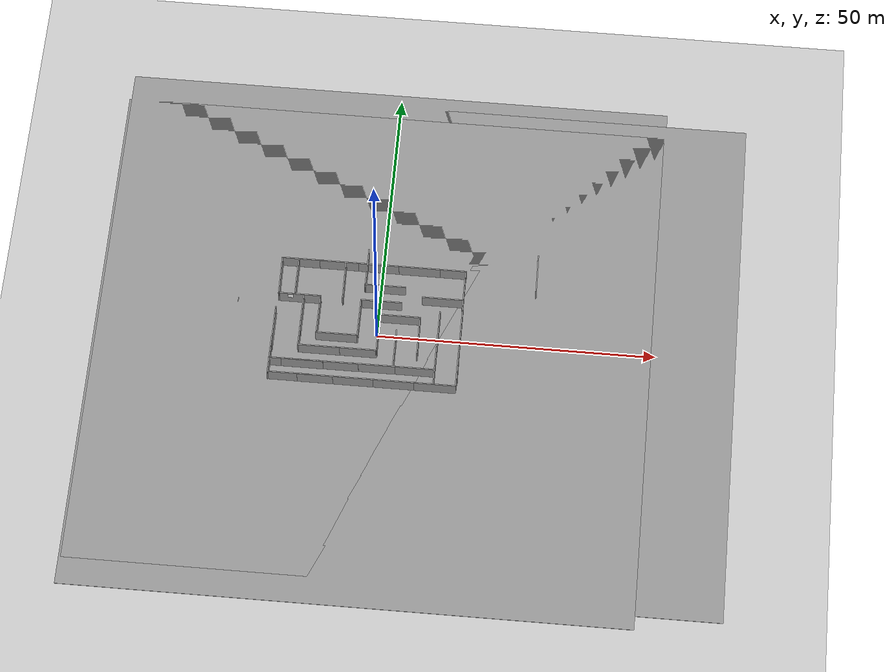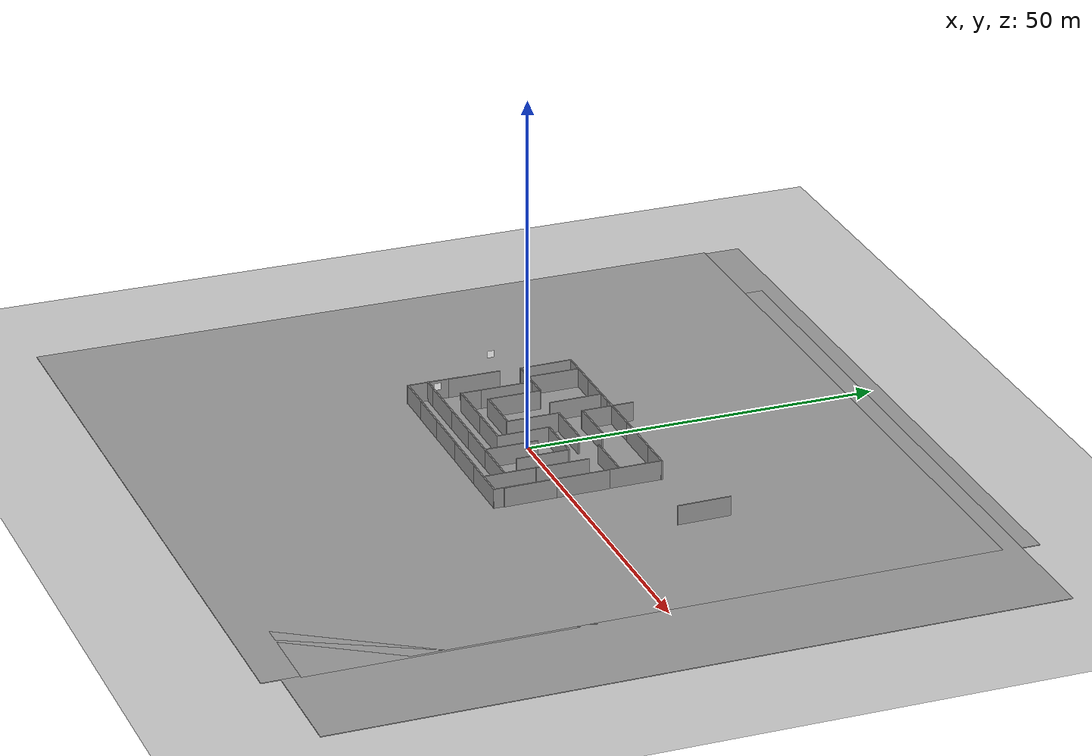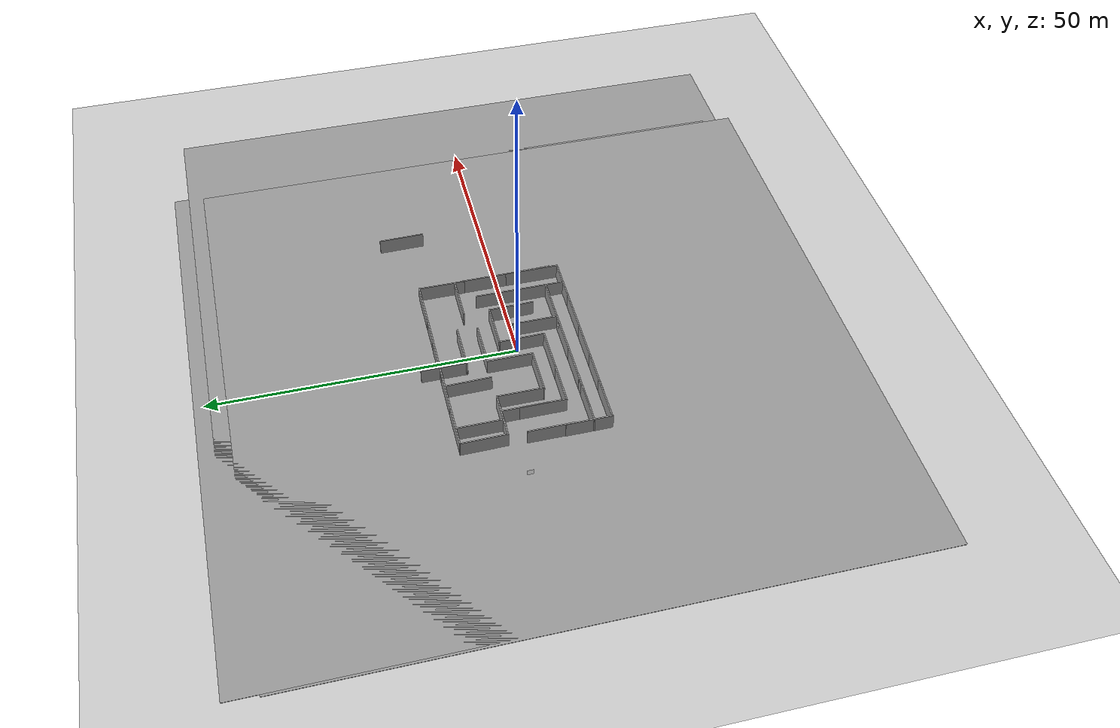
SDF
<sdf version="1.7">
 <world name="default">
  <light name="sun" type="directional">
   <pose>0 0 10 0 -0 0</pose>
   <diffuse>0.8 0.8 0.8 1</diffuse>
   <specular>0.2 0.2 0.2 1</specular>
   <attenuation>
    <range>1000</range>
    <constant>0.9</constant>
    <linear>0.01</linear>
    <quadratic>0.001</quadratic>
   </attenuation>
   <direction>-0.5 0.1 -0.9</direction>
   <spot><inner_angle>0</inner_angle><outer_angle>0</outer_angle><falloff>0</falloff></spot>
  </light>
  <model name="ground_plane">
   <static>1</static>
   <link name="link">
    <collision name="collision">
     <geometry><plane><normal>0 0 1</normal><size>100 100</size></plane></geometry>
     <surface><friction><ode><mu>100</mu><mu2>50</mu2></ode></friction></surface>
    </collision>
    <visual name="visual">
     <cast_shadows>0</cast_shadows>
     <geometry><plane><normal>0 0 1</normal><size>100 100</size></plane></geometry>
     <material>
      <script><uri>file://media/materials/scripts/gazebo.material</uri><name>Gazebo/Grey</name></script>
     </material>
    </visual>
   </link>
  </model>
  <physics name="default_physics" default="0" type="ode">
   <ode>
    <solver>
     <type>quick</type>
     <iters>10</iters>
     <sor>1.3</sor>
     <use_dynamic_moi_rescaling>0</use_dynamic_moi_rescaling>
    </solver>
    <constraints>
     <cfm>0</cfm>
     <erp>0.2</erp>
     <contact_max_correcting_vel>100</contact_max_correcting_vel>
     <contact_surface_layer>0.001</contact_surface_layer>
    </constraints>
   </ode>
   <max_step_size>0.004</max_step_size>
   <real_time_factor>1</real_time_factor>
   <real_time_update_rate>250</real_time_update_rate>
  </physics>
  <model name="grey_wall">
   <static>1</static>
   <link name="link">
    <pose>0 0 1.4 0 -0 0</pose>
    <collision name="collision"><geometry><box><size>7.5 0.2 2.8</size></box></geometry></collision>
    <visual name="visual">
     <cast_shadows>0</cast_shadows>
     <geometry><box><size>7.5 0.2 2.8</size></box></geometry>
     <material>
      <script>
       <uri>model://grey_wall/materials/scripts</uri>
       <uri>model://grey_wall/materials/textures</uri>
       <name>vrc/grey_wall</name>
      </script>
     </material>
    </visual>
   </link>
   <pose>14.9551 2.05959 0 0 0 -1.57</pose>
  </model>
  <model name="grey_wall2">
   <static>1</static>
   <link name="link">
    <pose>0 0 1.4 0 -0 0</pose>
    <collision name="collision"><geometry><box><size>7.5 0.2 2.8</size></box></geometry></collision>
    <visual name="visual">
     <cast_shadows>0</cast_shadows>
     <geometry><box><size>7.5 0.2 2.8</size></box></geometry>
     <material>
      <script>
       <uri>model://grey_wall/materials/scripts</uri>
       <uri>model://grey_wall/materials/textures</uri>
       <name>vrc/grey_wall</name>
      </script>
     </material>
    </visual>
   </link>
   <pose>-7.8442 13.1925 0 0 -0 0</pose>
  </model>
  <gravity>0 0 -9.8066</gravity>
  <magnetic_field>6e-06 2.3e-05 -4.2e-05</magnetic_field>
  <atmosphere type="adiabatic"/>
  <scene><ambient>0.4 0.4 0.4 1</ambient><background>0.7 0.7 0.7 1</background><shadows>1</shadows></scene>
  <audio><device>default</device></audio>
  <spherical_coordinates>
   <surface_model>EARTH_WGS84</surface_model>
   <latitude_deg>0</latitude_deg>
   <longitude_deg>0</longitude_deg>
   <elevation>0</elevation>
   <heading_deg>0</heading_deg>
  </spherical_coordinates>
  <model name="ground_plane_0">
   <static>1</static>
   <link name="link">
    <collision name="collision">
     <geometry><plane><normal>0 0 1</normal><size>100 100</size></plane></geometry>
     <surface><friction><ode><mu>100</mu><mu2>50</mu2></ode></friction></surface>
    </collision>
    <visual name="visual">
     <cast_shadows>0</cast_shadows>
     <geometry><plane><normal>0 0 1</normal><size>100 100</size></plane></geometry>
     <material>
      <script><uri>file://media/materials/scripts/gazebo.material</uri><name>Gazebo/Grey</name></script>
     </material>
    </visual>
   </link>
   <pose>-0.464511 1.60165 0 0 -0 0</pose>
  </model>
  <model name="grey_wall_1">
   <static>1</static>
   <link name="link">
    <pose>0 0 1.4 0 -0 0</pose>
    <collision name="collision"><geometry><box><size>7.5 0.2 2.8</size></box></geometry></collision>
    <visual name="visual">
     <cast_shadows>0</cast_shadows>
     <geometry><box><size>7.5 0.2 2.8</size></box></geometry>
     <material>
      <script>
       <uri>model://grey_wall/materials/scripts</uri>
       <uri>model://grey_wall/materials/textures</uri>
       <name>vrc/grey_wall</name>
      </script>
     </material>
    </visual>
   </link>
   <pose>0.28063 5.66889 0.02117 0 -0 0</pose>
  </model>
  <model name="ground_plane_1">
   <static>1</static>
   <link name="link">
    <collision name="collision">
     <geometry><plane><normal>0 0 1</normal><size>100 100</size></plane></geometry>
     <surface><friction><ode><mu>100</mu><mu2>50</mu2></ode></friction></surface>
    </collision>
    <visual name="visual">
     <cast_shadows>0</cast_shadows>
     <geometry><plane><normal>0 0 1</normal><size>100 100</size></plane></geometry>
     <material>
      <script><uri>file://media/materials/scripts/gazebo.material</uri><name>Gazebo/Grey</name></script>
     </material>
    </visual>
   </link>
   <pose>-0.823568 -3.4952 0 0 -0 0</pose>
  </model>
  <model name="grey_wall_0">
   <static>1</static>
   <link name="link">
    <pose>0 0 1.4 0 -0 0</pose>
    <collision name="collision"><geometry><box><size>7.5 0.2 2.8</size></box></geometry></collision>
    <visual name="visual">
     <cast_shadows>0</cast_shadows>
     <geometry><box><size>7.5 0.2 2.8</size></box></geometry>
     <material>
      <script>
       <uri>model://grey_wall/materials/scripts</uri>
       <uri>model://grey_wall/materials/textures</uri>
       <name>vrc/grey_wall</name>
      </script>
     </material>
    </visual>
   </link>
   <pose>-18.3431 9.47425 0 0 0 -1.5556</pose>
  </model>
  <model name="grey_wall_clone">
   <static>1</static>
   <link name="link">
    <pose>0 0 1.4 0 -0 0</pose>
    <collision name="collision"><geometry><box><size>7.5 0.2 2.8</size></box></geometry></collision>
    <visual name="visual">
     <cast_shadows>0</cast_shadows>
     <geometry><box><size>7.5 0.2 2.8</size></box></geometry>
     <material>
      <script>
       <uri>model://grey_wall/materials/scripts</uri>
       <uri>model://grey_wall/materials/textures</uri>
       <name>vrc/grey_wall</name>
      </script>
     </material>
    </visual>
   </link>
   <pose>3.51845 -3.70048 0 0 0 -1.57</pose>
  </model>
  <model name="grey_wall_clone_0">
   <static>1</static>
   <link name="link">
    <pose>0 0 1.4 0 -0 0</pose>
    <collision name="collision"><geometry><box><size>7.5 0.2 2.8</size></box></geometry></collision>
    <visual name="visual">
     <cast_shadows>0</cast_shadows>
     <geometry><box><size>7.5 0.2 2.8</size></box></geometry>
     <material>
      <script>
       <uri>model://grey_wall/materials/scripts</uri>
       <uri>model://grey_wall/materials/textures</uri>
       <name>vrc/grey_wall</name>
      </script>
     </material>
    </visual>
   </link>
   <pose>14.9474 -6.7391 0 0 0 -1.57</pose>
  </model>
  <model name="grey_wall2_clone">
   <static>1</static>
   <link name="link">
    <pose>0 0 1.4 0 -0 0</pose>
    <collision name="collision"><geometry><box><size>7.5 0.2 2.8</size></box></geometry></collision>
    <visual name="visual">
     <cast_shadows>0</cast_shadows>
     <geometry><box><size>7.5 0.2 2.8</size></box></geometry>
     <material>
      <script>
       <uri>model://grey_wall/materials/scripts</uri>
       <uri>model://grey_wall/materials/textures</uri>
       <name>vrc/grey_wall</name>
      </script>
     </material>
    </visual>
   </link>
   <pose>11.3177 13.1553 0 0 -0 0</pose>
  </model>
  <model name="grey_wall_clone_clone">
   <static>1</static>
   <link name="link">
    <pose>0 0 1.4 0 -0 0</pose>
    <collision name="collision"><geometry><box><size>7.5 0.2 2.8</size></box></geometry></collision>
    <visual name="visual">
     <cast_shadows>0</cast_shadows>
     <geometry><box><size>7.5 0.2 2.8</size></box></geometry>
     <material>
      <script>
       <uri>model://grey_wall/materials/scripts</uri>
       <uri>model://grey_wall/materials/textures</uri>
       <name>vrc/grey_wall</name>
      </script>
     </material>
    </visual>
   </link>
   <pose>-13.7285 2.11301 0 0 0 -1.57</pose>
  </model>
  <model name="grey_wall_clone_clone_0">
   <static>1</static>
   <link name="link">
    <pose>0 0 1.4 0 -0 0</pose>
    <collision name="collision"><geometry><box><size>7.5 0.2 2.8</size></box></geometry></collision>
    <visual name="visual">
     <cast_shadows>0</cast_shadows>
     <geometry><box><size>7.5 0.2 2.8</size></box></geometry>
     <material>
      <script>
       <uri>model://grey_wall/materials/scripts</uri>
       <uri>model://grey_wall/materials/textures</uri>
       <name>vrc/grey_wall</name>
      </script>
     </material>
    </visual>
   </link>
   <pose>-2.92535 12.4984 0 0 0 -1.57</pose>
  </model>
  <model name="grey_wall_clone_clone_1">
   <static>1</static>
   <link name="link">
    <pose>0 0 1.4 0 -0 0</pose>
    <collision name="collision"><geometry><box><size>7.5 0.2 2.8</size></box></geometry></collision>
    <visual name="visual">
     <cast_shadows>0</cast_shadows>
     <geometry><box><size>7.5 0.2 2.8</size></box></geometry>
     <material>
      <script>
       <uri>model://grey_wall/materials/scripts</uri>
       <uri>model://grey_wall/materials/textures</uri>
       <name>vrc/grey_wall</name>
      </script>
     </material>
    </visual>
   </link>
   <pose>10.9636 0.688063 0 0 0 -1.57</pose>
  </model>
  <model name="grey_wall_clone_clone_2">
   <static>1</static>
   <link name="link">
    <pose>0 0 1.4 0 -0 0</pose>
    <collision name="collision"><geometry><box><size>7.5 0.2 2.8</size></box></geometry></collision>
    <visual name="visual">
     <cast_shadows>0</cast_shadows>
     <geometry><box><size>7.5 0.2 2.8</size></box></geometry>
     <material>
      <script>
       <uri>model://grey_wall/materials/scripts</uri>
       <uri>model://grey_wall/materials/textures</uri>
       <name>vrc/grey_wall</name>
      </script>
     </material>
    </visual>
   </link>
   <pose>14.8784 9.31723 0 0 0 -1.57</pose>
  </model>
  <model name="grey_wall2_clone_clone">
   <static>1</static>
   <link name="link">
    <pose>0 0 1.4 0 -0 0</pose>
    <collision name="collision"><geometry><box><size>7.5 0.2 2.8</size></box></geometry></collision>
    <visual name="visual">
     <cast_shadows>0</cast_shadows>
     <geometry><box><size>7.5 0.2 2.8</size></box></geometry>
     <material>
      <script>
       <uri>model://grey_wall/materials/scripts</uri>
       <uri>model://grey_wall/materials/textures</uri>
       <name>vrc/grey_wall</name>
      </script>
     </material>
    </visual>
   </link>
   <pose>-0.814881 13.1804 0 0 -0 0</pose>
  </model>
  <model name="grey_wall2_clone_clone_0">
   <static>1</static>
   <link name="link">
    <pose>0 0 1.4 0 -0 0</pose>
    <collision name="collision"><geometry><box><size>7.5 0.2 2.8</size></box></geometry></collision>
    <visual name="visual">
     <cast_shadows>0</cast_shadows>
     <geometry><box><size>7.5 0.2 2.8</size></box></geometry>
     <material>
      <script>
       <uri>model://grey_wall/materials/scripts</uri>
       <uri>model://grey_wall/materials/textures</uri>
       <name>vrc/grey_wall</name>
      </script>
     </material>
    </visual>
   </link>
   <pose>6.54043 13.1498 0.03026 0 -0 0</pose>
  </model>
  <model name="grey_wall2_clone_clone_1">
   <static>1</static>
   <link name="link">
    <pose>0 0 1.4 0 -0 0</pose>
    <collision name="collision"><geometry><box><size>7.5 0.2 2.8</size></box></geometry></collision>
    <visual name="visual">
     <cast_shadows>0</cast_shadows>
     <geometry><box><size>7.5 0.2 2.8</size></box></geometry>
     <material>
      <script>
       <uri>model://grey_wall/materials/scripts</uri>
       <uri>model://grey_wall/materials/textures</uri>
       <name>vrc/grey_wall</name>
      </script>
     </material>
    </visual>
   </link>
   <pose>-3.19351 -10.3671 0 0 -0 0</pose>
  </model>
  <model name="grey_wall2_clone_clone_2">
   <static>1</static>
   <link name="link">
    <pose>0 0 1.4 0 -0 0</pose>
    <collision name="collision"><geometry><box><size>7.5 0.2 2.8</size></box></geometry></collision>
    <visual name="visual">
     <cast_shadows>0</cast_shadows>
     <geometry><box><size>7.5 0.2 2.8</size></box></geometry>
     <material>
      <script>
       <uri>model://grey_wall/materials/scripts</uri>
       <uri>model://grey_wall/materials/textures</uri>
       <name>vrc/grey_wall</name>
      </script>
     </material>
    </visual>
   </link>
   <pose>-14.8822 -10.3456 0 0 -0 0</pose>
  </model>
  <model name="ground_plane_2">
   <static>1</static>
   <link name="link">
    <collision name="collision">
     <geometry><plane><normal>0 0 1</normal><size>100 100</size></plane></geometry>
     <surface><friction><ode><mu>100</mu><mu2>50</mu2></ode></friction></surface>
    </collision>
    <visual name="visual">
     <cast_shadows>0</cast_shadows>
     <geometry><plane><normal>0 0 1</normal><size>100 100</size></plane></geometry>
     <material>
      <script><uri>file://media/materials/scripts/gazebo.material</uri><name>Gazebo/Grey</name></script>
     </material>
    </visual>
   </link>
   <pose>14.3028 -0.922524 0 0 -0 0</pose>
  </model>
  <model name="robocup_3d_field">
   <static>1</static>
   <link name="field">
    <pose>0 0 0.01 0 -0 0</pose>
    <collision name="collision">
     <geometry><plane><normal>0 0 1</normal><size>30 20</size></plane></geometry>
     <surface><friction><ode><mu>100</mu><mu2>50</mu2></ode></friction></surface>
    </collision>
    <visual name="base1">
     <pose>0 11 0.001 0 -0 0</pose>
     <cast_shadows>0</cast_shadows>
     <geometry><plane><normal>0 0 1</normal><size>34 2</size></plane></geometry>
     <material>
      <script>
       <uri>model://robocup_3Dsim_field/materials/scripts/</uri>
       <uri>model://robocup_3Dsim_field/materials/textures/</uri>
       <name>RoboCup/FieldBorder</name>
      </script>
     </material>
    </visual>
    <visual name="base2">
     <pose>0 -11 0.001 0 -0 0</pose>
     <cast_shadows>0</cast_shadows>
     <geometry><plane><normal>0 0 1</normal><size>34 2</size></plane></geometry>
     <material>
      <script>
       <uri>model://robocup_3Dsim_field/materials/scripts/</uri>
       <uri>model://robocup_3Dsim_field/materials/textures/</uri>
       <name>RoboCup/FieldBorder</name>
      </script>
     </material>
    </visual>
    <visual name="base3">
     <pose>16 0 0.001 0 -0 0</pose>
     <cast_shadows>0</cast_shadows>
     <geometry><plane><normal>0 0 1</normal><size>2 20</size></plane></geometry>
     <material>
      <script>
       <uri>model://robocup_3Dsim_field/materials/scripts/</uri>
       <uri>model://robocup_3Dsim_field/materials/textures/</uri>
       <name>RoboCup/FieldBorder</name>
      </script>
     </material>
    </visual>
    <visual name="base4">
     <pose>-16 0 0.001 0 -0 0</pose>
     <cast_shadows>0</cast_shadows>
     <geometry><plane><normal>0 0 1</normal><size>2 20</size></plane></geometry>
     <material>
      <script>
       <uri>model://robocup_3Dsim_field/materials/scripts/</uri>
       <uri>model://robocup_3Dsim_field/materials/textures/</uri>
       <name>RoboCup/FieldBorder</name>
      </script>
     </material>
    </visual>
    <visual name="carpet">
     <cast_shadows>0</cast_shadows>
     <geometry><plane><normal>0 0 1</normal><size>30 20</size></plane></geometry>
     <material>
      <script>
       <uri>model://robocup_3Dsim_field/materials/scripts/</uri>
       <uri>model://robocup_3Dsim_field/materials/textures/</uri>
       <name>RoboCup/Grass</name>
      </script>
     </material>
    </visual>
   </link>
   <pose>-1.73085 1.42275 0 0 -0 0</pose>
  </model>
  <model name="grey_wall_clone_clone_2_clone">
   <static>1</static>
   <link name="link">
    <pose>0 0 1.4 0 -0 0</pose>
    <collision name="collision"><geometry><box><size>7.5 0.2 2.8</size></box></geometry></collision>
    <visual name="visual">
     <cast_shadows>0</cast_shadows>
     <geometry><box><size>7.5 0.2 2.8</size></box></geometry>
     <material>
      <script>
       <uri>model://grey_wall/materials/scripts</uri>
       <uri>model://grey_wall/materials/textures</uri>
       <name>vrc/grey_wall</name>
      </script>
     </material>
    </visual>
   </link>
   <pose>-3.38793 1.97665 0 0 0 -1.57</pose>
  </model>
  <model name="grey_wall_clone_clone_2_clone_0">
   <static>1</static>
   <link name="link">
    <pose>0 0 1.4 0 -0 0</pose>
    <collision name="collision"><geometry><box><size>7.5 0.2 2.8</size></box></geometry></collision>
    <visual name="visual">
     <cast_shadows>0</cast_shadows>
     <geometry><box><size>7.5 0.2 2.8</size></box></geometry>
     <material>
      <script>
       <uri>model://grey_wall/materials/scripts</uri>
       <uri>model://grey_wall/materials/textures</uri>
       <name>vrc/grey_wall</name>
      </script>
     </material>
    </visual>
   </link>
   <pose>-18.4949 -0.854226 0 0 0 -1.57</pose>
  </model>
  <model name="grey_wall_clone_clone_2_clone_1">
   <static>1</static>
   <link name="link">
    <pose>0 0 1.4 0 -0 0</pose>
    <collision name="collision"><geometry><box><size>7.5 0.2 2.8</size></box></geometry></collision>
    <visual name="visual">
     <cast_shadows>0</cast_shadows>
     <geometry><box><size>7.5 0.2 2.8</size></box></geometry>
     <material>
      <script>
       <uri>model://grey_wall/materials/scripts</uri>
       <uri>model://grey_wall/materials/textures</uri>
       <name>vrc/grey_wall</name>
      </script>
     </material>
    </visual>
   </link>
   <pose>-18.5718 -6.80642 0 0 0 -1.57</pose>
  </model>
  <model name="grey_wall2_clone_clone_1_clone">
   <static>1</static>
   <link name="link">
    <pose>0 0 1.4 0 -0 0</pose>
    <collision name="collision"><geometry><box><size>7.5 0.2 2.8</size></box></geometry></collision>
    <visual name="visual">
     <cast_shadows>0</cast_shadows>
     <geometry><box><size>7.5 0.2 2.8</size></box></geometry>
     <material>
      <script>
       <uri>model://grey_wall/materials/scripts</uri>
       <uri>model://grey_wall/materials/textures</uri>
       <name>vrc/grey_wall</name>
      </script>
     </material>
    </visual>
   </link>
   <pose>-9.55626 -10.3656 0 0 -0 0</pose>
  </model>
  <model name="grey_wall_clone_clone_2_clone_clone">
   <static>1</static>
   <link name="link">
    <pose>0 0 1.4 0 -0 0</pose>
    <collision name="collision"><geometry><box><size>7.5 0.2 2.8</size></box></geometry></collision>
    <visual name="visual">
     <cast_shadows>0</cast_shadows>
     <geometry><box><size>7.5 0.2 2.8</size></box></geometry>
     <material>
      <script>
       <uri>model://grey_wall/materials/scripts</uri>
       <uri>model://grey_wall/materials/textures</uri>
       <name>vrc/grey_wall</name>
      </script>
     </material>
    </visual>
   </link>
   <pose>-15.385 9.49012 0 0 0 -1.57</pose>
  </model>
  <model name="grey_wall_0_clone">
   <static>1</static>
   <link name="link">
    <pose>0 0 1.4 0 -0 0</pose>
    <collision name="collision"><geometry><box><size>7.5 0.2 2.8</size></box></geometry></collision>
    <visual name="visual">
     <cast_shadows>0</cast_shadows>
     <geometry><box><size>7.5 0.2 2.8</size></box></geometry>
     <material>
      <script>
       <uri>model://grey_wall/materials/scripts</uri>
       <uri>model://grey_wall/materials/textures</uri>
       <name>vrc/grey_wall</name>
      </script>
     </material>
    </visual>
   </link>
   <pose>15.0092 -5.27414 0 0 0 -1.5556</pose>
  </model>
  <model name="grey_wall_0_clone_0">
   <static>1</static>
   <link name="link">
    <pose>0 0 1.4 0 -0 0</pose>
    <collision name="collision"><geometry><box><size>7.5 0.2 2.8</size></box></geometry></collision>
    <visual name="visual">
     <cast_shadows>0</cast_shadows>
     <geometry><box><size>7.5 0.2 2.8</size></box></geometry>
     <material>
      <script>
       <uri>model://grey_wall/materials/scripts</uri>
       <uri>model://grey_wall/materials/textures</uri>
       <name>vrc/grey_wall</name>
      </script>
     </material>
    </visual>
   </link>
   <pose>27.7694 13.9054 0 0 0 -1.5556</pose>
  </model>
  <model name="grey_wall_0_clone_1">
   <static>1</static>
   <link name="link">
    <pose>0 0 1.4 0 -0 0</pose>
    <collision name="collision"><geometry><box><size>7.5 0.2 2.8</size></box></geometry></collision>
    <visual name="visual">
     <cast_shadows>0</cast_shadows>
     <geometry><box><size>7.5 0.2 2.8</size></box></geometry>
     <material>
      <script>
       <uri>model://grey_wall/materials/scripts</uri>
       <uri>model://grey_wall/materials/textures</uri>
       <name>vrc/grey_wall</name>
      </script>
     </material>
    </visual>
   </link>
   <pose>7.53092 -0.749632 0 0 0 -1.5556</pose>
  </model>
  <model name="grey_wall_0_clone_2">
   <static>1</static>
   <link name="link">
    <pose>0 0 1.4 0 -0 0</pose>
    <collision name="collision"><geometry><box><size>7.5 0.2 2.8</size></box></geometry></collision>
    <visual name="visual">
     <cast_shadows>0</cast_shadows>
     <geometry><box><size>7.5 0.2 2.8</size></box></geometry>
     <material>
      <script>
       <uri>model://grey_wall/materials/scripts</uri>
       <uri>model://grey_wall/materials/textures</uri>
       <name>vrc/grey_wall</name>
      </script>
     </material>
    </visual>
   </link>
   <pose>0.261928 -0.791678 0 0 0 -1.5556</pose>
  </model>
  <model name="grey_wall_0_clone_3">
   <static>1</static>
   <link name="link">
    <pose>0 0 1.4 0 -0 0</pose>
    <collision name="collision"><geometry><box><size>7.5 0.2 2.8</size></box></geometry></collision>
    <visual name="visual">
     <cast_shadows>0</cast_shadows>
     <geometry><box><size>7.5 0.2 2.8</size></box></geometry>
     <material>
      <script>
       <uri>model://grey_wall/materials/scripts</uri>
       <uri>model://grey_wall/materials/textures</uri>
       <name>vrc/grey_wall</name>
      </script>
     </material>
    </visual>
   </link>
   <pose>-6.79686 9.44409 0 0 0 -1.5556</pose>
  </model>
  <model name="grey_wall2_clone_clone_0_clone">
   <static>1</static>
   <link name="link">
    <pose>0 0 1.4 0 -0 0</pose>
    <collision name="collision"><geometry><box><size>7.5 0.2 2.8</size></box></geometry></collision>
    <visual name="visual">
     <cast_shadows>0</cast_shadows>
     <geometry><box><size>7.5 0.2 2.8</size></box></geometry>
     <material>
      <script>
       <uri>model://grey_wall/materials/scripts</uri>
       <uri>model://grey_wall/materials/textures</uri>
       <name>vrc/grey_wall</name>
      </script>
     </material>
    </visual>
   </link>
   <pose>0.620783 8.92312 0 0 -0 0</pose>
  </model>
  <model name="grey_wall2_clone_clone_0_clone_0">
   <static>1</static>
   <link name="link">
    <pose>0 0 1.4 0 -0 0</pose>
    <collision name="collision"><geometry><box><size>7.5 0.2 2.8</size></box></geometry></collision>
    <visual name="visual">
     <cast_shadows>0</cast_shadows>
     <geometry><box><size>7.5 0.2 2.8</size></box></geometry>
     <material>
      <script>
       <uri>model://grey_wall/materials/scripts</uri>
       <uri>model://grey_wall/materials/textures</uri>
       <name>vrc/grey_wall</name>
      </script>
     </material>
    </visual>
   </link>
   <pose>11.2174 7.16559 0 0 -0 0</pose>
  </model>
  <model name="grey_wall2_clone_clone_0_clone_1">
   <static>1</static>
   <link name="link">
    <pose>0 0 1.4 0 -0 0</pose>
    <collision name="collision"><geometry><box><size>7.5 0.2 2.8</size></box></geometry></collision>
    <visual name="visual">
     <cast_shadows>0</cast_shadows>
     <geometry><box><size>7.5 0.2 2.8</size></box></geometry>
     <material>
      <script>
       <uri>model://grey_wall/materials/scripts</uri>
       <uri>model://grey_wall/materials/textures</uri>
       <name>vrc/grey_wall</name>
      </script>
     </material>
    </visual>
   </link>
   <pose>4.00163 -10.3793 0 0 -0 0</pose>
  </model>
  <model name="grey_wall2_clone_clone_0_clone_2">
   <static>1</static>
   <link name="link">
    <pose>0 0 1.4 0 -0 0</pose>
    <collision name="collision"><geometry><box><size>7.5 0.2 2.8</size></box></geometry></collision>
    <visual name="visual">
     <cast_shadows>0</cast_shadows>
     <geometry><box><size>7.5 0.2 2.8</size></box></geometry>
     <material>
      <script>
       <uri>model://grey_wall/materials/scripts</uri>
       <uri>model://grey_wall/materials/textures</uri>
       <name>vrc/grey_wall</name>
      </script>
     </material>
    </visual>
   </link>
   <pose>11.2527 -10.3893 0 0 -0 0</pose>
  </model>
  <model name="grey_wall2_clone_clone_0_clone_3">
   <static>1</static>
   <link name="link">
    <pose>0 0 1.4 0 -0 0</pose>
    <collision name="collision"><geometry><box><size>7.5 0.2 2.8</size></box></geometry></collision>
    <visual name="visual">
     <cast_shadows>0</cast_shadows>
     <geometry><box><size>7.5 0.2 2.8</size></box></geometry>
     <material>
      <script>
       <uri>model://grey_wall/materials/scripts</uri>
       <uri>model://grey_wall/materials/textures</uri>
       <name>vrc/grey_wall</name>
      </script>
     </material>
    </visual>
   </link>
   <pose>-14.6892 13.2022 0 0 -0 0</pose>
  </model>
  <model name="grey_wall2_clone_clone_0_clone_0_clone">
   <static>1</static>
   <link name="link">
    <pose>0 0 1.4 0 -0 0</pose>
    <collision name="collision"><geometry><box><size>7.5 0.2 2.8</size></box></geometry></collision>
    <visual name="visual">
     <cast_shadows>0</cast_shadows>
     <geometry><box><size>7.5 0.2 2.8</size></box></geometry>
     <material>
      <script>
       <uri>model://grey_wall/materials/scripts</uri>
       <uri>model://grey_wall/materials/textures</uri>
       <name>vrc/grey_wall</name>
      </script>
     </material>
    </visual>
   </link>
   <pose>-10.0335 -4.45423 0 0 -0 0</pose>
  </model>
  <model name="grey_wall2_clone_clone_0_clone_0_clone_0">
   <static>1</static>
   <link name="link">
    <pose>0 0 1.4 0 -0 0</pose>
    <collision name="collision"><geometry><box><size>7.5 0.2 2.8</size></box></geometry></collision>
    <visual name="visual">
     <cast_shadows>0</cast_shadows>
     <geometry><box><size>7.5 0.2 2.8</size></box></geometry>
     <material>
      <script>
       <uri>model://grey_wall/materials/scripts</uri>
       <uri>model://grey_wall/materials/textures</uri>
       <name>vrc/grey_wall</name>
      </script>
     </material>
    </visual>
   </link>
   <pose>-7.13434 -1.64655 0 0 -0 0</pose>
  </model>
  <model name="grey_wall2_clone_clone_0_clone_0_clone_1">
   <static>1</static>
   <link name="link">
    <pose>0 0 1.4 0 -0 0</pose>
    <collision name="collision"><geometry><box><size>7.5 0.2 2.8</size></box></geometry></collision>
    <visual name="visual">
     <cast_shadows>0</cast_shadows>
     <geometry><box><size>7.5 0.2 2.8</size></box></geometry>
     <material>
      <script>
       <uri>model://grey_wall/materials/scripts</uri>
       <uri>model://grey_wall/materials/textures</uri>
       <name>vrc/grey_wall</name>
      </script>
     </material>
    </visual>
   </link>
   <pose>-3.3845 -4.44173 0 0 -0 0</pose>
  </model>
  <model name="grey_wall2_clone_clone_0_clone_0_clone_2">
   <static>1</static>
   <link name="link">
    <pose>0 0 1.4 0 -0 0</pose>
    <collision name="collision"><geometry><box><size>7.5 0.2 2.8</size></box></geometry></collision>
    <visual name="visual">
     <cast_shadows>0</cast_shadows>
     <geometry><box><size>7.5 0.2 2.8</size></box></geometry>
     <material>
      <script>
       <uri>model://grey_wall/materials/scripts</uri>
       <uri>model://grey_wall/materials/textures</uri>
       <name>vrc/grey_wall</name>
      </script>
     </material>
    </visual>
   </link>
   <pose>3.84234 2.92148 0 0 -0 0</pose>
  </model>
  <model name="grey_wall_clone_clone_2_clone_clone_0">
   <static>1</static>
   <link name="link">
    <pose>0 0 1.4 0 -0 0</pose>
    <collision name="collision"><geometry><box><size>7.5 0.2 2.8</size></box></geometry></collision>
    <visual name="visual">
     <cast_shadows>0</cast_shadows>
     <geometry><box><size>7.5 0.2 2.8</size></box></geometry>
     <material>
      <script>
       <uri>model://grey_wall/materials/scripts</uri>
       <uri>model://grey_wall/materials/textures</uri>
       <name>vrc/grey_wall</name>
      </script>
     </material>
    </visual>
   </link>
   <pose>-10.7365 2.13673 0 0 0 -1.57</pose>
  </model>
  <model name="grey_wall_clone_clone_2_clone_clone_1">
   <static>1</static>
   <link name="link">
    <pose>0 0 1.4 0 -0 0</pose>
    <collision name="collision"><geometry><box><size>7.5 0.2 2.8</size></box></geometry></collision>
    <visual name="visual">
     <cast_shadows>0</cast_shadows>
     <geometry><box><size>7.5 0.2 2.8</size></box></geometry>
     <material>
      <script>
       <uri>model://grey_wall/materials/scripts</uri>
       <uri>model://grey_wall/materials/textures</uri>
       <name>vrc/grey_wall</name>
      </script>
     </material>
    </visual>
   </link>
   <pose>-13.7391 -0.816447 0 0 0 -1.57</pose>
  </model>
  <model name="grey_wall_clone_clone_2_clone_clone_2">
   <static>1</static>
   <link name="link">
    <pose>0 0 1.4 0 -0 0</pose>
    <collision name="collision"><geometry><box><size>7.5 0.2 2.8</size></box></geometry></collision>
    <visual name="visual">
     <cast_shadows>0</cast_shadows>
     <geometry><box><size>7.5 0.2 2.8</size></box></geometry>
     <material>
      <script>
       <uri>model://grey_wall/materials/scripts</uri>
       <uri>model://grey_wall/materials/textures</uri>
       <name>vrc/grey_wall</name>
      </script>
     </material>
    </visual>
   </link>
   <pose>10.9456 -6.60049 0 0 0 -1.57</pose>
  </model>
  <model name="grey_wall_1_clone">
   <static>1</static>
   <link name="link">
    <pose>0 0 1.4 0 -0 0</pose>
    <collision name="collision"><geometry><box><size>7.5 0.2 2.8</size></box></geometry></collision>
    <visual name="visual">
     <cast_shadows>0</cast_shadows>
     <geometry><box><size>7.5 0.2 2.8</size></box></geometry>
     <material>
      <script>
       <uri>model://grey_wall/materials/scripts</uri>
       <uri>model://grey_wall/materials/textures</uri>
       <name>vrc/grey_wall</name>
      </script>
     </material>
    </visual>
   </link>
   <pose>-14.3774 5.82895 0.02117 0 -0 0</pose>
  </model>
  <model name="grey_wall_1_clone_0">
   <static>1</static>
   <link name="link">
    <pose>0 0 1.4 0 -0 0</pose>
    <collision name="collision"><geometry><box><size>7.5 0.2 2.8</size></box></geometry></collision>
    <visual name="visual">
     <cast_shadows>0</cast_shadows>
     <geometry><box><size>7.5 0.2 2.8</size></box></geometry>
     <material>
      <script>
       <uri>model://grey_wall/materials/scripts</uri>
       <uri>model://grey_wall/materials/textures</uri>
       <name>vrc/grey_wall</name>
      </script>
     </material>
    </visual>
   </link>
   <pose>0.158334 -7.45045 0.02117 0 -0 0</pose>
  </model>
  <model name="grey_wall2_clone_clone_0_clone_0_clone_3">
   <static>1</static>
   <link name="link">
    <pose>0 0 1.4 0 -0 0</pose>
    <collision name="collision"><geometry><box><size>7.5 0.2 2.8</size></box></geometry></collision>
    <visual name="visual">
     <cast_shadows>0</cast_shadows>
     <geometry><box><size>7.5 0.2 2.8</size></box></geometry>
     <material>
      <script>
       <uri>model://grey_wall/materials/scripts</uri>
       <uri>model://grey_wall/materials/textures</uri>
       <name>vrc/grey_wall</name>
      </script>
     </material>
    </visual>
   </link>
   <pose>7.17771 -7.43055 0 0 -0 0</pose>
  </model>
  <model name="grey_wall_1_clone_0_clone">
   <static>1</static>
   <link name="link">
    <pose>0 0 1.4 0 -0 0</pose>
    <collision name="collision"><geometry><box><size>7.5 0.2 2.8</size></box></geometry></collision>
    <visual name="visual">
     <cast_shadows>0</cast_shadows>
     <geometry><box><size>7.5 0.2 2.8</size></box></geometry>
     <material>
      <script>
       <uri>model://grey_wall/materials/scripts</uri>
       <uri>model://grey_wall/materials/textures</uri>
       <name>vrc/grey_wall</name>
      </script>
     </material>
    </visual>
   </link>
   <pose>-6.37256 -7.47635 0.02117 0 -0 0</pose>
  </model>
  <model name="grey_wall_1_clone_0_clone_0">
   <static>1</static>
   <link name="link">
    <pose>0 0 1.4 0 -0 0</pose>
    <collision name="collision"><geometry><box><size>7.5 0.2 2.8</size></box></geometry></collision>
    <visual name="visual">
     <cast_shadows>0</cast_shadows>
     <geometry><box><size>7.5 0.2 2.8</size></box></geometry>
     <material>
      <script>
       <uri>model://grey_wall/materials/scripts</uri>
       <uri>model://grey_wall/materials/textures</uri>
       <name>vrc/grey_wall</name>
      </script>
     </material>
    </visual>
   </link>
   <pose>-12.7088 -7.5057 0.02117 0 -0 0</pose>
  </model>
  <model name="grey_wall_1_clone_0_clone_1">
   <static>1</static>
   <link name="link">
    <pose>0 0 1.4 0 -0 0</pose>
    <collision name="collision"><geometry><box><size>7.5 0.2 2.8</size></box></geometry></collision>
    <visual name="visual">
     <cast_shadows>0</cast_shadows>
     <geometry><box><size>7.5 0.2 2.8</size></box></geometry>
     <material>
      <script>
       <uri>model://grey_wall/materials/scripts</uri>
       <uri>model://grey_wall/materials/textures</uri>
       <name>vrc/grey_wall</name>
      </script>
     </material>
    </visual>
   </link>
   <pose>-14.9692 -7.49623 0.02117 0 -0 0</pose>
  </model>
  <model name="marker_0">
   <link name="marker">
    <pose>0 0 0.5 3.14159 1.57079 3.14159</pose>
    <inertial>
     <mass>1</mass>
     <inertia><ixx>1</ixx><ixy>0</ixy><ixz>0</ixz><iyy>1</iyy><iyz>0</iyz><izz>1</izz></inertia>
    </inertial>
    <visual name="visual">
     <geometry><box><size>1 1 1e-05</size></box></geometry>
     <material>
      <script>
       <uri>model://marker_0/materials/scripts</uri>
       <uri>model://marker_0/materials/textures</uri>
       <name>Marker0/Marker</name>
      </script>
      <ambient>1 1 1 1</ambient>
      <diffuse>1 1 1 1</diffuse>
      <specular>0 0 0 1</specular>
      <emissive>1 1 1 0</emissive>
      <shader type="vertex"><normal_map>__default__</normal_map></shader>
      <lighting>0</lighting>
     </material>
    </visual>
    <collision name="collision">
     <geometry><box><size>0.1778 0.1778 1e-05</size></box></geometry>
     <surface>
      <friction>
       <ode><mu>1</mu><mu2>1</mu2><fdir1>0 0 0</fdir1><slip1>0</slip1><slip2>0</slip2></ode>
       <torsional>
        <coefficient>1</coefficient>
        <patch_radius>0</patch_radius>
        <surface_radius>0</surface_radius>
        <use_patch_radius>1</use_patch_radius>
        <ode><slip>0</slip></ode>
       </torsional>
      </friction>
      <bounce><restitution_coefficient>0</restitution_coefficient><threshold>1e+06</threshold></bounce>
      <contact>
       <collide_without_contact>0</collide_without_contact>
       <collide_without_contact_bitmask>1</collide_without_contact_bitmask>
       <collide_bitmask>1</collide_bitmask>
       <ode>
        <soft_cfm>0</soft_cfm>
        <soft_erp>0.2</soft_erp>
        <kp>1e+13</kp>
        <kd>1</kd>
        <max_vel>0.01</max_vel>
        <min_depth>0</min_depth>
       </ode>
       <bullet>
        <split_impulse>1</split_impulse>
        <split_impulse_penetration_threshold>-0.01</split_impulse_penetration_threshold>
        <soft_cfm>0</soft_cfm>
        <soft_erp>0.2</soft_erp>
        <kp>1e+13</kp>
        <kd>1</kd>
       </bullet>
      </contact>
     </surface>
    </collision>
   </link>
   <link name="marker_pad">
    <pose>-1e-05 0 0.5 3.14159 1.57079 3.14159</pose>
    <inertial>
     <mass>1</mass>
     <inertia><ixx>1</ixx><ixy>0</ixy><ixz>0</ixz><iyy>1</iyy><iyz>0</iyz><izz>1</izz></inertia>
    </inertial>
    <visual name="visual">
     <geometry><box><size>0 0 0</size></box></geometry>
     <material>
      <lighting>0</lighting>
      <script><uri>file://media/materials/scripts/gazebo.material</uri><name>Gazebo/White</name></script>
      <ambient>0.3 0.3 0.3 1</ambient>
      <diffuse>0.7 0.7 0.7 1</diffuse>
      <specular>0.01 0.01 0.01 1</specular>
      <emissive>1 1 1 0</emissive>
      <shader type="vertex"><normal_map>__default__</normal_map></shader>
     </material>
    </visual>
    <collision name="collision">
     <geometry><box><size>0.1778 0.1778 1e-05</size></box></geometry>
     <surface>
      <friction>
       <ode><mu>1</mu><mu2>1</mu2><fdir1>0 0 0</fdir1><slip1>0</slip1><slip2>0</slip2></ode>
       <torsional>
        <coefficient>1</coefficient>
        <patch_radius>0</patch_radius>
        <surface_radius>0</surface_radius>
        <use_patch_radius>1</use_patch_radius>
        <ode><slip>0</slip></ode>
       </torsional>
      </friction>
      <bounce><restitution_coefficient>0</restitution_coefficient><threshold>1e+06</threshold></bounce>
      <contact>
       <collide_without_contact>0</collide_without_contact>
       <collide_without_contact_bitmask>1</collide_without_contact_bitmask>
       <collide_bitmask>1</collide_bitmask>
       <ode>
        <soft_cfm>0</soft_cfm>
        <soft_erp>0.2</soft_erp>
        <kp>1e+13</kp>
        <kd>1</kd>
        <max_vel>0.01</max_vel>
        <min_depth>0</min_depth>
       </ode>
       <bullet>
        <split_impulse>1</split_impulse>
        <split_impulse_penetration_threshold>-0.01</split_impulse_penetration_threshold>
        <soft_cfm>0</soft_cfm>
        <soft_erp>0.2</soft_erp>
        <kp>1e+13</kp>
        <kd>1</kd>
       </bullet>
      </contact>
     </surface>
    </collision>
   </link>
   <joint name="marker_JOINT_marker_pad" type="revolute">
    <parent>marker</parent>
    <child>marker_pad</child>
    <axis>
     <xyz>0 0 1</xyz>
     <limit><lower>0</lower><upper>0</upper><effort>-1</effort><velocity>-1</velocity></limit>
     <dynamics>
      <spring_reference>0</spring_reference>
      <spring_stiffness>0</spring_stiffness>
      <damping>0</damping>
      <friction>0</friction>
     </dynamics>
    </axis>
    <physics>
     <ode><limit><cfm>0</cfm><erp>0.2</erp></limit><suspension><cfm>0</cfm><erp>0.2</erp></suspension></ode>
    </physics>
   </joint>
   <static>1</static>
   <pose>2.24144 -7.28894 1.45828 0 0 -1.5708</pose>
  </model>
  <model name="marker_0_0">
   <link name="marker">
    <pose>0 0 0.5 3.14159 1.57079 3.14159</pose>
    <inertial>
     <mass>1</mass>
     <inertia><ixx>1</ixx><ixy>0</ixy><ixz>0</ixz><iyy>1</iyy><iyz>0</iyz><izz>1</izz></inertia>
    </inertial>
    <visual name="visual">
     <geometry><box><size>1 1 1e-05</size></box></geometry>
     <material>
      <script>
       <uri>model://marker_0/materials/scripts</uri>
       <uri>model://marker_0/materials/textures</uri>
       <name>Marker0/Marker</name>
      </script>
      <ambient>1 1 1 1</ambient>
      <diffuse>1 1 1 1</diffuse>
      <specular>0 0 0 1</specular>
      <emissive>1 1 1 0</emissive>
      <shader type="vertex"><normal_map>__default__</normal_map></shader>
      <lighting>0</lighting>
     </material>
    </visual>
    <collision name="collision">
     <geometry><box><size>0.1778 0.1778 1e-05</size></box></geometry>
     <surface>
      <friction>
       <ode><mu>1</mu><mu2>1</mu2><fdir1>0 0 0</fdir1><slip1>0</slip1><slip2>0</slip2></ode>
       <torsional>
        <coefficient>1</coefficient>
        <patch_radius>0</patch_radius>
        <surface_radius>0</surface_radius>
        <use_patch_radius>1</use_patch_radius>
        <ode><slip>0</slip></ode>
       </torsional>
      </friction>
      <bounce><restitution_coefficient>0</restitution_coefficient><threshold>1e+06</threshold></bounce>
      <contact>
       <collide_without_contact>0</collide_without_contact>
       <collide_without_contact_bitmask>1</collide_without_contact_bitmask>
       <collide_bitmask>1</collide_bitmask>
       <ode>
        <soft_cfm>0</soft_cfm>
        <soft_erp>0.2</soft_erp>
        <kp>1e+13</kp>
        <kd>1</kd>
        <max_vel>0.01</max_vel>
        <min_depth>0</min_depth>
       </ode>
       <bullet>
        <split_impulse>1</split_impulse>
        <split_impulse_penetration_threshold>-0.01</split_impulse_penetration_threshold>
        <soft_cfm>0</soft_cfm>
        <soft_erp>0.2</soft_erp>
        <kp>1e+13</kp>
        <kd>1</kd>
       </bullet>
      </contact>
     </surface>
    </collision>
   </link>
   <link name="marker_pad">
    <pose>-1e-05 0 0.5 3.14159 1.57079 3.14159</pose>
    <inertial>
     <mass>1</mass>
     <inertia><ixx>1</ixx><ixy>0</ixy><ixz>0</ixz><iyy>1</iyy><iyz>0</iyz><izz>1</izz></inertia>
    </inertial>
    <visual name="visual">
     <geometry><box><size>0 0 0</size></box></geometry>
     <material>
      <lighting>0</lighting>
      <script><uri>file://media/materials/scripts/gazebo.material</uri><name>Gazebo/White</name></script>
      <ambient>0.3 0.3 0.3 1</ambient>
      <diffuse>0.7 0.7 0.7 1</diffuse>
      <specular>0.01 0.01 0.01 1</specular>
      <emissive>1 1 1 0</emissive>
      <shader type="vertex"><normal_map>__default__</normal_map></shader>
     </material>
    </visual>
    <collision name="collision">
     <geometry><box><size>0.1778 0.1778 1e-05</size></box></geometry>
     <surface>
      <friction>
       <ode><mu>1</mu><mu2>1</mu2><fdir1>0 0 0</fdir1><slip1>0</slip1><slip2>0</slip2></ode>
       <torsional>
        <coefficient>1</coefficient>
        <patch_radius>0</patch_radius>
        <surface_radius>0</surface_radius>
        <use_patch_radius>1</use_patch_radius>
        <ode><slip>0</slip></ode>
       </torsional>
      </friction>
      <bounce><restitution_coefficient>0</restitution_coefficient><threshold>1e+06</threshold></bounce>
      <contact>
       <collide_without_contact>0</collide_without_contact>
       <collide_without_contact_bitmask>1</collide_without_contact_bitmask>
       <collide_bitmask>1</collide_bitmask>
       <ode>
        <soft_cfm>0</soft_cfm>
        <soft_erp>0.2</soft_erp>
        <kp>1e+13</kp>
        <kd>1</kd>
        <max_vel>0.01</max_vel>
        <min_depth>0</min_depth>
       </ode>
       <bullet>
        <split_impulse>1</split_impulse>
        <split_impulse_penetration_threshold>-0.01</split_impulse_penetration_threshold>
        <soft_cfm>0</soft_cfm>
        <soft_erp>0.2</soft_erp>
        <kp>1e+13</kp>
        <kd>1</kd>
       </bullet>
      </contact>
     </surface>
    </collision>
   </link>
   <joint name="marker_JOINT_marker_pad" type="revolute">
    <parent>marker</parent>
    <child>marker_pad</child>
    <axis>
     <xyz>0 0 1</xyz>
     <limit><lower>0</lower><upper>0</upper><effort>-1</effort><velocity>-1</velocity></limit>
     <dynamics>
      <spring_reference>0</spring_reference>
      <spring_stiffness>0</spring_stiffness>
      <damping>0</damping>
      <friction>0</friction>
     </dynamics>
    </axis>
    <physics>
     <ode><limit><cfm>0</cfm><erp>0.2</erp></limit><suspension><cfm>0</cfm><erp>0.2</erp></suspension></ode>
    </physics>
   </joint>
   <static>1</static>
   <pose>-18.4162 -6.17166 1.45959 0 -0 0</pose>
  </model>
  <model name="marker_1">
   <link name="marker">
    <pose>0 0 0.5 3.14159 1.57079 3.14159</pose>
    <inertial>
     <mass>1</mass>
     <inertia><ixx>1</ixx><ixy>0</ixy><ixz>0</ixz><iyy>1</iyy><iyz>0</iyz><izz>1</izz></inertia>
    </inertial>
    <visual name="visual">
     <geometry><box><size>1 1 1e-05</size></box></geometry>
     <material>
      <script>
       <uri>model://marker_1/materials/scripts</uri>
       <uri>model://marker_1/materials/textures</uri>
       <name>Marker1/Marker</name>
      </script>
      <ambient>1 1 1 1</ambient>
      <diffuse>1 1 1 1</diffuse>
      <specular>0 0 0 1</specular>
      <emissive>1 1 1 0</emissive>
      <shader type="vertex"><normal_map>__default__</normal_map></shader>
      <lighting>0</lighting>
     </material>
    </visual>
    <collision name="collision">
     <geometry><box><size>0.1778 0.1778 1e-05</size></box></geometry>
     <surface>
      <friction>
       <ode><mu>1</mu><mu2>1</mu2><fdir1>0 0 0</fdir1><slip1>0</slip1><slip2>0</slip2></ode>
       <torsional>
        <coefficient>1</coefficient>
        <patch_radius>0</patch_radius>
        <surface_radius>0</surface_radius>
        <use_patch_radius>1</use_patch_radius>
        <ode><slip>0</slip></ode>
       </torsional>
      </friction>
      <bounce><restitution_coefficient>0</restitution_coefficient><threshold>1e+06</threshold></bounce>
      <contact>
       <collide_without_contact>0</collide_without_contact>
       <collide_without_contact_bitmask>1</collide_without_contact_bitmask>
       <collide_bitmask>1</collide_bitmask>
       <ode>
        <soft_cfm>0</soft_cfm>
        <soft_erp>0.2</soft_erp>
        <kp>1e+13</kp>
        <kd>1</kd>
        <max_vel>0.01</max_vel>
        <min_depth>0</min_depth>
       </ode>
       <bullet>
        <split_impulse>1</split_impulse>
        <split_impulse_penetration_threshold>-0.01</split_impulse_penetration_threshold>
        <soft_cfm>0</soft_cfm>
        <soft_erp>0.2</soft_erp>
        <kp>1e+13</kp>
        <kd>1</kd>
       </bullet>
      </contact>
     </surface>
    </collision>
   </link>
   <link name="marker_pad">
    <pose>-1e-05 0 0.5 3.14159 1.57079 3.14159</pose>
    <inertial>
     <mass>1</mass>
     <inertia><ixx>1</ixx><ixy>0</ixy><ixz>0</ixz><iyy>1</iyy><iyz>0</iyz><izz>1</izz></inertia>
    </inertial>
    <visual name="visual">
     <geometry><box><size>0 0 0</size></box></geometry>
     <material>
      <lighting>0</lighting>
      <script><uri>file://media/materials/scripts/gazebo.material</uri><name>Gazebo/White</name></script>
      <ambient>0.3 0.3 0.3 1</ambient>
      <diffuse>0.7 0.7 0.7 1</diffuse>
      <specular>0.01 0.01 0.01 1</specular>
      <emissive>1 1 1 0</emissive>
      <shader type="vertex"><normal_map>__default__</normal_map></shader>
     </material>
    </visual>
    <collision name="collision">
     <geometry><box><size>0.1778 0.1778 1e-05</size></box></geometry>
     <surface>
      <friction>
       <ode><mu>1</mu><mu2>1</mu2><fdir1>0 0 0</fdir1><slip1>0</slip1><slip2>0</slip2></ode>
       <torsional>
        <coefficient>1</coefficient>
        <patch_radius>0</patch_radius>
        <surface_radius>0</surface_radius>
        <use_patch_radius>1</use_patch_radius>
        <ode><slip>0</slip></ode>
       </torsional>
      </friction>
      <bounce><restitution_coefficient>0</restitution_coefficient><threshold>1e+06</threshold></bounce>
      <contact>
       <collide_without_contact>0</collide_without_contact>
       <collide_without_contact_bitmask>1</collide_without_contact_bitmask>
       <collide_bitmask>1</collide_bitmask>
       <ode>
        <soft_cfm>0</soft_cfm>
        <soft_erp>0.2</soft_erp>
        <kp>1e+13</kp>
        <kd>1</kd>
        <max_vel>0.01</max_vel>
        <min_depth>0</min_depth>
       </ode>
       <bullet>
        <split_impulse>1</split_impulse>
        <split_impulse_penetration_threshold>-0.01</split_impulse_penetration_threshold>
        <soft_cfm>0</soft_cfm>
        <soft_erp>0.2</soft_erp>
        <kp>1e+13</kp>
        <kd>1</kd>
       </bullet>
      </contact>
     </surface>
    </collision>
   </link>
   <joint name="marker_JOINT_marker_pad" type="revolute">
    <parent>marker</parent>
    <child>marker_pad</child>
    <axis>
     <xyz>0 0 1</xyz>
     <limit><lower>0</lower><upper>0</upper><effort>-1</effort><velocity>-1</velocity></limit>
     <dynamics>
      <spring_reference>0</spring_reference>
      <spring_stiffness>0</spring_stiffness>
      <damping>0</damping>
      <friction>0</friction>
     </dynamics>
    </axis>
    <physics>
     <ode><limit><cfm>0</cfm><erp>0.2</erp></limit><suspension><cfm>0</cfm><erp>0.2</erp></suspension></ode>
    </physics>
   </joint>
   <static>1</static>
   <pose>-16.1333 5.6495 1.65523 0 0 -1.5708</pose>
  </model>
  <model name="marker_2">
   <link name="marker">
    <pose>0 0 0.5 3.14159 1.57079 3.14159</pose>
    <inertial>
     <mass>1</mass>
     <inertia><ixx>1</ixx><ixy>0</ixy><ixz>0</ixz><iyy>1</iyy><iyz>0</iyz><izz>1</izz></inertia>
    </inertial>
    <visual name="visual">
     <geometry><box><size>1 0.98 1e-05</size></box></geometry>
     <material>
      <script>
       <uri>model://marker_2/materials/scripts</uri>
       <uri>model://marker_2/materials/textures</uri>
       <name>Marker2/Marker</name>
      </script>
      <ambient>1 1 1 1</ambient>
      <diffuse>1 1 1 1</diffuse>
      <specular>0 0 0 1</specular>
      <emissive>1 1 1 0</emissive>
      <shader type="vertex"><normal_map>__default__</normal_map></shader>
      <lighting>0</lighting>
     </material>
    </visual>
    <collision name="collision">
     <geometry><box><size>0.1778 0.1778 1e-05</size></box></geometry>
     <surface>
      <friction>
       <ode><mu>1</mu><mu2>1</mu2><fdir1>0 0 0</fdir1><slip1>0</slip1><slip2>0</slip2></ode>
       <torsional>
        <coefficient>1</coefficient>
        <patch_radius>0</patch_radius>
        <surface_radius>0</surface_radius>
        <use_patch_radius>1</use_patch_radius>
        <ode><slip>0</slip></ode>
       </torsional>
      </friction>
      <bounce><restitution_coefficient>0</restitution_coefficient><threshold>1e+06</threshold></bounce>
      <contact>
       <collide_without_contact>0</collide_without_contact>
       <collide_without_contact_bitmask>1</collide_without_contact_bitmask>
       <collide_bitmask>1</collide_bitmask>
       <ode>
        <soft_cfm>0</soft_cfm>
        <soft_erp>0.2</soft_erp>
        <kp>1e+13</kp>
        <kd>1</kd>
        <max_vel>0.01</max_vel>
        <min_depth>0</min_depth>
       </ode>
       <bullet>
        <split_impulse>1</split_impulse>
        <split_impulse_penetration_threshold>-0.01</split_impulse_penetration_threshold>
        <soft_cfm>0</soft_cfm>
        <soft_erp>0.2</soft_erp>
        <kp>1e+13</kp>
        <kd>1</kd>
       </bullet>
      </contact>
     </surface>
    </collision>
   </link>
   <link name="marker_pad">
    <pose>-1e-05 0 0.5 3.14159 1.57079 3.14159</pose>
    <inertial>
     <mass>1</mass>
     <inertia><ixx>1</ixx><ixy>0</ixy><ixz>0</ixz><iyy>1</iyy><iyz>0</iyz><izz>1</izz></inertia>
    </inertial>
    <visual name="visual">
     <geometry><box><size>0 0 0</size></box></geometry>
     <material>
      <lighting>0</lighting>
      <script><uri>file://media/materials/scripts/gazebo.material</uri><name>Gazebo/White</name></script>
      <ambient>0.3 0.3 0.3 1</ambient>
      <diffuse>0.7 0.7 0.7 1</diffuse>
      <specular>0.01 0.01 0.01 1</specular>
      <emissive>1 1 1 0</emissive>
      <shader type="vertex"><normal_map>__default__</normal_map></shader>
     </material>
    </visual>
    <collision name="collision">
     <geometry><box><size>0.1778 0.1778 1e-05</size></box></geometry>
     <surface>
      <friction>
       <ode><mu>1</mu><mu2>1</mu2><fdir1>0 0 0</fdir1><slip1>0</slip1><slip2>0</slip2></ode>
       <torsional>
        <coefficient>1</coefficient>
        <patch_radius>0</patch_radius>
        <surface_radius>0</surface_radius>
        <use_patch_radius>1</use_patch_radius>
        <ode><slip>0</slip></ode>
       </torsional>
      </friction>
      <bounce><restitution_coefficient>0</restitution_coefficient><threshold>1e+06</threshold></bounce>
      <contact>
       <collide_without_contact>0</collide_without_contact>
       <collide_without_contact_bitmask>1</collide_without_contact_bitmask>
       <collide_bitmask>1</collide_bitmask>
       <ode>
        <soft_cfm>0</soft_cfm>
        <soft_erp>0.2</soft_erp>
        <kp>1e+13</kp>
        <kd>1</kd>
        <max_vel>0.01</max_vel>
        <min_depth>0</min_depth>
       </ode>
       <bullet>
        <split_impulse>1</split_impulse>
        <split_impulse_penetration_threshold>-0.01</split_impulse_penetration_threshold>
        <soft_cfm>0</soft_cfm>
        <soft_erp>0.2</soft_erp>
        <kp>1e+13</kp>
        <kd>1</kd>
       </bullet>
      </contact>
     </surface>
    </collision>
   </link>
   <joint name="marker_JOINT_marker_pad" type="revolute">
    <parent>marker</parent>
    <child>marker_pad</child>
    <axis>
     <xyz>0 0 1</xyz>
     <limit><lower>0</lower><upper>0</upper><effort>-1</effort><velocity>-1</velocity></limit>
     <dynamics>
      <spring_reference>0</spring_reference>
      <spring_stiffness>0</spring_stiffness>
      <damping>0</damping>
      <friction>0</friction>
     </dynamics>
    </axis>
    <physics>
     <ode><limit><cfm>0</cfm><erp>0.2</erp></limit><suspension><cfm>0</cfm><erp>0.2</erp></suspension></ode>
    </physics>
   </joint>
   <static>1</static>
   <pose>-25.4306 4.08573 1.55064 0 -0 0</pose>
  </model>
 </world>
</sdf>
